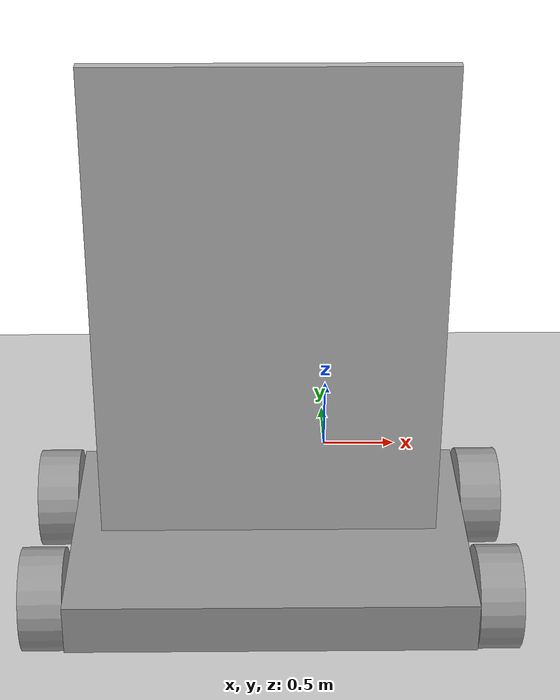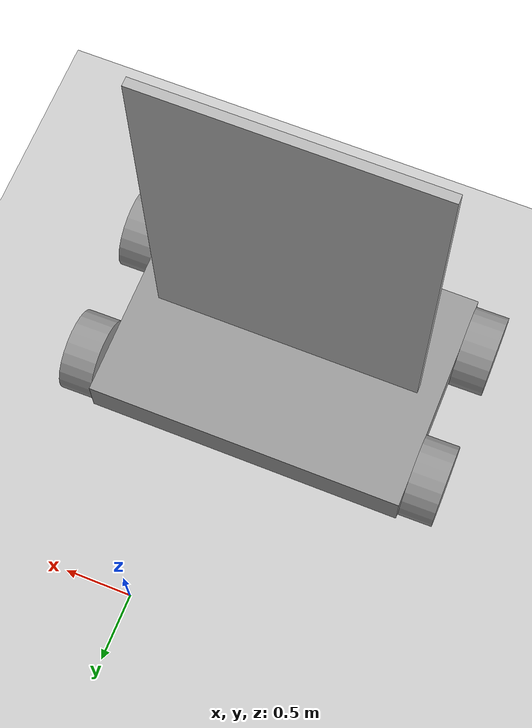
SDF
<sdf version="1.7">
 <world name="default">
  <light name="sun" type="directional">
   <pose>0 0 10 0 -0 0</pose>
   <diffuse>0.8 0.8 0.8 1</diffuse>
   <specular>0.2 0.2 0.2 1</specular>
   <attenuation>
    <range>1000</range>
    <constant>0.9</constant>
    <linear>0.01</linear>
    <quadratic>0.001</quadratic>
   </attenuation>
   <direction>-0.5 0.1 -0.9</direction>
   <spot><inner_angle>0</inner_angle><outer_angle>0</outer_angle><falloff>0</falloff></spot>
  </light>
  <model name="ground_plane">
   <static>1</static>
   <link name="link">
    <collision name="collision">
     <geometry><plane><normal>0 0 1</normal><size>100 100</size></plane></geometry>
     <surface>
      <contact><collide_bitmask>65535</collide_bitmask></contact>
      <friction><ode><mu>100</mu><mu2>50</mu2></ode></friction>
     </surface>
    </collision>
    <visual name="visual">
     <cast_shadows>0</cast_shadows>
     <geometry><plane><normal>0 0 1</normal><size>100 100</size></plane></geometry>
     <material>
      <script><uri>file://media/materials/scripts/gazebo.material</uri><name>Gazebo/Grey</name></script>
     </material>
    </visual>
   </link>
  </model>
  <gravity>0 0 -9.8</gravity>
  <magnetic_field>6e-06 2.3e-05 -4.2e-05</magnetic_field>
  <atmosphere type="adiabatic"/>
  <physics type="ode">
   <max_step_size>0.001</max_step_size>
   <real_time_factor>1</real_time_factor>
   <real_time_update_rate>1000</real_time_update_rate>
  </physics>
  <scene><ambient>0.4 0.4 0.4 1</ambient><background>0.7 0.7 0.7 1</background><shadows>1</shadows></scene>
  <spherical_coordinates>
   <surface_model>EARTH_WGS84</surface_model>
   <latitude_deg>0</latitude_deg>
   <longitude_deg>0</longitude_deg>
   <elevation>0</elevation>
   <heading_deg>0</heading_deg>
  </spherical_coordinates>
  <model name="newcar">
   <link name="link_2">
    <inertial>
     <mass>1.18976</mass>
     <inertia>
      <ixx>0.283727</ixx>
      <ixy>0</ixy>
      <ixz>0</ixz>
      <iyy>0.555714</iyy>
      <iyz>0</iyz>
      <izz>0.821029</izz>
     </inertia>
    </inertial>
    <pose>-0.068781 -0.11442 0.5 0 -0 0</pose>
    <visual name="visual">
     <geometry><box><size>2.34779 1.66398 0.304712</size></box></geometry>
     <material>
      <lighting>1</lighting>
      <script><uri>file://media/materials/scripts/gazebo.material</uri><name>Gazebo/Grey</name></script>
      <shader type="pixel"><normal_map>__default__</normal_map></shader>
      <ambient>0.3 0.3 0.3 1</ambient>
      <diffuse>0.7 0.7 0.7 1</diffuse>
      <specular>0.01 0.01 0.01 1</specular>
      <emissive>0 0 0 1</emissive>
     </material>
    </visual>
    <collision name="collision">
     <geometry><box><size>2.34779 1.66398 0.304712</size></box></geometry>
     <surface>
      <friction>
       <ode><mu>1</mu><mu2>1</mu2><fdir1>0 0 0</fdir1><slip1>0</slip1><slip2>0</slip2></ode>
       <torsional>
        <coefficient>1</coefficient>
        <patch_radius>0</patch_radius>
        <surface_radius>0</surface_radius>
        <use_patch_radius>1</use_patch_radius>
        <ode><slip>0</slip></ode>
       </torsional>
      </friction>
      <bounce><restitution_coefficient>0</restitution_coefficient><threshold>1e+06</threshold></bounce>
      <contact>
       <collide_without_contact>0</collide_without_contact>
       <collide_without_contact_bitmask>1</collide_without_contact_bitmask>
       <collide_bitmask>1</collide_bitmask>
       <ode>
        <soft_cfm>0</soft_cfm>
        <soft_erp>0.2</soft_erp>
        <kp>1e+13</kp>
        <kd>1</kd>
        <max_vel>0.01</max_vel>
        <min_depth>0</min_depth>
       </ode>
       <bullet>
        <split_impulse>1</split_impulse>
        <split_impulse_penetration_threshold>-0.01</split_impulse_penetration_threshold>
        <soft_cfm>0</soft_cfm>
        <soft_erp>0.2</soft_erp>
        <kp>1e+13</kp>
        <kd>1</kd>
       </bullet>
      </contact>
     </surface>
    </collision>
   </link>
   <link name="link_3_clone_clone_1">
    <inertial>
     <mass>1</mass>
     <inertia><ixx>0.145833</ixx><ixy>0</ixy><ixz>0</ixz><iyy>0.145833</iyy><iyz>0</iyz><izz>0.125</izz></inertia>
    </inertial>
    <pose>1.23342 -0.645018 0.5 1.57079 -9.6e-05 -1.55974</pose>
    <visual name="visual">
     <geometry><cylinder><radius>0.3</radius><length>0.25</length></cylinder></geometry>
     <material>
      <lighting>1</lighting>
      <script><uri>file://media/materials/scripts/gazebo.material</uri><name>Gazebo/Grey</name></script>
      <shader type="pixel"><normal_map>__default__</normal_map></shader>
      <ambient>0.3 0.3 0.3 1</ambient>
      <diffuse>0.7 0.7 0.7 1</diffuse>
      <specular>0.01 0.01 0.01 1</specular>
      <emissive>0 0 0 1</emissive>
     </material>
    </visual>
    <collision name="collision">
     <geometry><cylinder><radius>0.3</radius><length>0.25</length></cylinder></geometry>
     <surface>
      <friction>
       <ode><mu>1</mu><mu2>1</mu2><fdir1>0 0 0</fdir1><slip1>0</slip1><slip2>0</slip2></ode>
       <torsional>
        <coefficient>1</coefficient>
        <patch_radius>0</patch_radius>
        <surface_radius>0</surface_radius>
        <use_patch_radius>1</use_patch_radius>
        <ode><slip>0</slip></ode>
       </torsional>
      </friction>
      <bounce><restitution_coefficient>0</restitution_coefficient><threshold>1e+06</threshold></bounce>
      <contact>
       <collide_without_contact>0</collide_without_contact>
       <collide_without_contact_bitmask>1</collide_without_contact_bitmask>
       <collide_bitmask>1</collide_bitmask>
       <ode>
        <soft_cfm>0</soft_cfm>
        <soft_erp>0.2</soft_erp>
        <kp>1e+13</kp>
        <kd>1</kd>
        <max_vel>0.01</max_vel>
        <min_depth>0</min_depth>
       </ode>
       <bullet>
        <split_impulse>1</split_impulse>
        <split_impulse_penetration_threshold>-0.01</split_impulse_penetration_threshold>
        <soft_cfm>0</soft_cfm>
        <soft_erp>0.2</soft_erp>
        <kp>1e+13</kp>
        <kd>1</kd>
       </bullet>
      </contact>
     </surface>
    </collision>
   </link>
   <link name="link_3_clone_clone_1_clone">
    <inertial>
     <mass>1</mass>
     <inertia><ixx>0.145833</ixx><ixy>0</ixy><ixz>0</ixz><iyy>0.145833</iyy><iyz>0</iyz><izz>0.125</izz></inertia>
    </inertial>
    <pose>1.23342 0.416178 0.5 1.57079 -9.6e-05 -1.55974</pose>
    <visual name="visual">
     <geometry><cylinder><radius>0.3</radius><length>0.25</length></cylinder></geometry>
     <material>
      <lighting>1</lighting>
      <script><uri>file://media/materials/scripts/gazebo.material</uri><name>Gazebo/Grey</name></script>
      <shader type="pixel"><normal_map>__default__</normal_map></shader>
      <ambient>0.3 0.3 0.3 1</ambient>
      <diffuse>0.7 0.7 0.7 1</diffuse>
      <specular>0.01 0.01 0.01 1</specular>
      <emissive>0 0 0 1</emissive>
     </material>
    </visual>
    <collision name="collision">
     <geometry><cylinder><radius>0.3</radius><length>0.25</length></cylinder></geometry>
     <surface>
      <friction>
       <ode><mu>1</mu><mu2>1</mu2><fdir1>0 0 0</fdir1><slip1>0</slip1><slip2>0</slip2></ode>
       <torsional>
        <coefficient>1</coefficient>
        <patch_radius>0</patch_radius>
        <surface_radius>0</surface_radius>
        <use_patch_radius>1</use_patch_radius>
        <ode><slip>0</slip></ode>
       </torsional>
      </friction>
      <bounce><restitution_coefficient>0</restitution_coefficient><threshold>1e+06</threshold></bounce>
      <contact>
       <collide_without_contact>0</collide_without_contact>
       <collide_without_contact_bitmask>1</collide_without_contact_bitmask>
       <collide_bitmask>1</collide_bitmask>
       <ode>
        <soft_cfm>0</soft_cfm>
        <soft_erp>0.2</soft_erp>
        <kp>1e+13</kp>
        <kd>1</kd>
        <max_vel>0.01</max_vel>
        <min_depth>0</min_depth>
       </ode>
       <bullet>
        <split_impulse>1</split_impulse>
        <split_impulse_penetration_threshold>-0.01</split_impulse_penetration_threshold>
        <soft_cfm>0</soft_cfm>
        <soft_erp>0.2</soft_erp>
        <kp>1e+13</kp>
        <kd>1</kd>
       </bullet>
      </contact>
     </surface>
    </collision>
   </link>
   <link name="link_3_clone_clone_1_clone_0">
    <inertial>
     <mass>1</mass>
     <inertia><ixx>0.145833</ixx><ixy>0</ixy><ixz>0</ixz><iyy>0.145833</iyy><iyz>0</iyz><izz>0.125</izz></inertia>
    </inertial>
    <pose>-1.37098 0.416178 0.5 1.57079 -9.6e-05 -1.55974</pose>
    <visual name="visual">
     <geometry><cylinder><radius>0.3</radius><length>0.25</length></cylinder></geometry>
     <material>
      <lighting>1</lighting>
      <script><uri>file://media/materials/scripts/gazebo.material</uri><name>Gazebo/Grey</name></script>
      <shader type="pixel"><normal_map>__default__</normal_map></shader>
      <ambient>0.3 0.3 0.3 1</ambient>
      <diffuse>0.7 0.7 0.7 1</diffuse>
      <specular>0.01 0.01 0.01 1</specular>
      <emissive>0 0 0 1</emissive>
     </material>
    </visual>
    <collision name="collision">
     <geometry><cylinder><radius>0.3</radius><length>0.25</length></cylinder></geometry>
     <surface>
      <friction>
       <ode><mu>1</mu><mu2>1</mu2><fdir1>0 0 0</fdir1><slip1>0</slip1><slip2>0</slip2></ode>
       <torsional>
        <coefficient>1</coefficient>
        <patch_radius>0</patch_radius>
        <surface_radius>0</surface_radius>
        <use_patch_radius>1</use_patch_radius>
        <ode><slip>0</slip></ode>
       </torsional>
      </friction>
      <bounce><restitution_coefficient>0</restitution_coefficient><threshold>1e+06</threshold></bounce>
      <contact>
       <collide_without_contact>0</collide_without_contact>
       <collide_without_contact_bitmask>1</collide_without_contact_bitmask>
       <collide_bitmask>1</collide_bitmask>
       <ode>
        <soft_cfm>0</soft_cfm>
        <soft_erp>0.2</soft_erp>
        <kp>1e+13</kp>
        <kd>1</kd>
        <max_vel>0.01</max_vel>
        <min_depth>0</min_depth>
       </ode>
       <bullet>
        <split_impulse>1</split_impulse>
        <split_impulse_penetration_threshold>-0.01</split_impulse_penetration_threshold>
        <soft_cfm>0</soft_cfm>
        <soft_erp>0.2</soft_erp>
        <kp>1e+13</kp>
        <kd>1</kd>
       </bullet>
      </contact>
     </surface>
    </collision>
   </link>
   <link name="link_3_clone_clone_1_clone_1">
    <inertial>
     <mass>1</mass>
     <inertia><ixx>0.145833</ixx><ixy>0</ixy><ixz>0</ixz><iyy>0.145833</iyy><iyz>0</iyz><izz>0.125</izz></inertia>
    </inertial>
    <pose>-1.37098 -0.645018 0.5 1.57079 -9.6e-05 -1.55974</pose>
    <visual name="visual">
     <geometry><cylinder><radius>0.3</radius><length>0.25</length></cylinder></geometry>
     <material>
      <lighting>1</lighting>
      <script><uri>file://media/materials/scripts/gazebo.material</uri><name>Gazebo/Grey</name></script>
      <shader type="pixel"><normal_map>__default__</normal_map></shader>
      <ambient>0.3 0.3 0.3 1</ambient>
      <diffuse>0.7 0.7 0.7 1</diffuse>
      <specular>0.01 0.01 0.01 1</specular>
      <emissive>0 0 0 1</emissive>
     </material>
    </visual>
    <collision name="collision">
     <geometry><cylinder><radius>0.3</radius><length>0.25</length></cylinder></geometry>
     <surface>
      <friction>
       <ode><mu>1</mu><mu2>1</mu2><fdir1>0 0 0</fdir1><slip1>0</slip1><slip2>0</slip2></ode>
       <torsional>
        <coefficient>1</coefficient>
        <patch_radius>0</patch_radius>
        <surface_radius>0</surface_radius>
        <use_patch_radius>1</use_patch_radius>
        <ode><slip>0</slip></ode>
       </torsional>
      </friction>
      <bounce><restitution_coefficient>0</restitution_coefficient><threshold>1e+06</threshold></bounce>
      <contact>
       <collide_without_contact>0</collide_without_contact>
       <collide_without_contact_bitmask>1</collide_without_contact_bitmask>
       <collide_bitmask>1</collide_bitmask>
       <ode>
        <soft_cfm>0</soft_cfm>
        <soft_erp>0.2</soft_erp>
        <kp>1e+13</kp>
        <kd>1</kd>
        <max_vel>0.01</max_vel>
        <min_depth>0</min_depth>
       </ode>
       <bullet>
        <split_impulse>1</split_impulse>
        <split_impulse_penetration_threshold>-0.01</split_impulse_penetration_threshold>
        <soft_cfm>0</soft_cfm>
        <soft_erp>0.2</soft_erp>
        <kp>1e+13</kp>
        <kd>1</kd>
       </bullet>
      </contact>
     </surface>
    </collision>
   </link>
   <model name="binsOnly">
    <link name="link_0">
     <inertial>
      <mass>1</mass>
      <inertia>
       <ixx>0.166667</ixx>
       <ixy>0</ixy>
       <ixz>0</ixz>
       <iyy>0.166667</iyy>
       <iyz>0</iyz>
       <izz>0.166667</izz>
      </inertia>
     </inertial>
     <visual name="visual">
      <geometry><mesh><uri>/home/kenan/testFlight/binsOnly.dae</uri><scale>1 1 1</scale></mesh></geometry>
     </visual>
     <collision name="collision">
      <geometry><mesh><uri>/home/kenan/testFlight/binsOnly.dae</uri><scale>1 1 1</scale></mesh></geometry>
      <surface>
       <friction>
        <ode><mu>1</mu><mu2>1</mu2><fdir1>0 0 0</fdir1><slip1>0</slip1><slip2>0</slip2></ode>
        <torsional>
         <coefficient>1</coefficient>
         <patch_radius>0</patch_radius>
         <surface_radius>0</surface_radius>
         <use_patch_radius>1</use_patch_radius>
         <ode><slip>0</slip></ode>
        </torsional>
       </friction>
       <bounce><restitution_coefficient>0</restitution_coefficient><threshold>1e+06</threshold></bounce>
       <contact>
        <collide_without_contact>0</collide_without_contact>
        <collide_without_contact_bitmask>1</collide_without_contact_bitmask>
        <collide_bitmask>1</collide_bitmask>
        <ode>
         <soft_cfm>0</soft_cfm>
         <soft_erp>0.2</soft_erp>
         <kp>1e+13</kp>
         <kd>1</kd>
         <max_vel>0.01</max_vel>
         <min_depth>0</min_depth>
        </ode>
        <bullet>
         <split_impulse>1</split_impulse>
         <split_impulse_penetration_threshold>-0.01</split_impulse_penetration_threshold>
         <soft_cfm>0</soft_cfm>
         <soft_erp>0.2</soft_erp>
         <kp>1e+13</kp>
         <kd>1</kd>
        </bullet>
       </contact>
      </surface>
     </collision>
    </link>
    <static>0</static>
    <pose>0.003387 -0.147686 0.609789 0 -0 0</pose>
   </model>
   <joint name="link_2_JOINT_11" type="revolute">
    <parent>link_2</parent>
    <child>link_3_clone_clone_1</child>
    <axis>
     <xyz>0 0 1</xyz>
     <limit>
      <lower>-1.79769e+308</lower>
      <upper>1.79769e+308</upper>
      <effort>-1</effort>
      <velocity>-1</velocity>
     </limit>
     <dynamics>
      <spring_reference>0</spring_reference>
      <spring_stiffness>0</spring_stiffness>
      <damping>0</damping>
      <friction>0</friction>
     </dynamics>
    </axis>
    <physics>
     <ode><limit><cfm>0</cfm><erp>0.2</erp></limit><suspension><cfm>0</cfm><erp>0.2</erp></suspension></ode>
    </physics>
   </joint>
   <joint name="link_2_JOINT_12" type="revolute">
    <parent>link_2</parent>
    <child>link_3_clone_clone_1_clone</child>
    <pose>0 0 0 -0.02 0 0</pose>
    <axis>
     <xyz>0 0 1</xyz>
     <limit>
      <lower>-1.79769e+308</lower>
      <upper>1.79769e+308</upper>
      <effort>-1</effort>
      <velocity>-1</velocity>
     </limit>
     <dynamics>
      <spring_reference>0</spring_reference>
      <spring_stiffness>0</spring_stiffness>
      <damping>0</damping>
      <friction>0</friction>
     </dynamics>
    </axis>
    <physics>
     <ode><limit><cfm>0</cfm><erp>0.2</erp></limit><suspension><cfm>0</cfm><erp>0.2</erp></suspension></ode>
    </physics>
   </joint>
   <joint name="link_2_JOINT_13" type="revolute">
    <parent>link_2</parent>
    <child>link_3_clone_clone_1_clone_0</child>
    <axis>
     <xyz>0 0 1</xyz>
     <limit>
      <lower>-1.79769e+308</lower>
      <upper>1.79769e+308</upper>
      <effort>-1</effort>
      <velocity>-1</velocity>
     </limit>
     <dynamics>
      <spring_reference>0</spring_reference>
      <spring_stiffness>0</spring_stiffness>
      <damping>0</damping>
      <friction>0</friction>
     </dynamics>
    </axis>
    <physics>
     <ode><limit><cfm>0</cfm><erp>0.2</erp></limit><suspension><cfm>0</cfm><erp>0.2</erp></suspension></ode>
    </physics>
   </joint>
   <joint name="link_2_JOINT_14" type="revolute">
    <parent>link_2</parent>
    <child>link_3_clone_clone_1_clone_1</child>
    <axis>
     <xyz>0 0 1</xyz>
     <limit>
      <lower>-1.79769e+308</lower>
      <upper>1.79769e+308</upper>
      <effort>-1</effort>
      <velocity>-1</velocity>
     </limit>
     <dynamics>
      <spring_reference>0</spring_reference>
      <spring_stiffness>0</spring_stiffness>
      <damping>0</damping>
      <friction>0</friction>
     </dynamics>
    </axis>
    <physics>
     <ode><limit><cfm>0</cfm><erp>0.2</erp></limit><suspension><cfm>0</cfm><erp>0.2</erp></suspension></ode>
    </physics>
   </joint>
   <joint name="link_2_JOINT_16" type="revolute">
    <parent>link_2</parent>
    <child>binsOnly::link_0</child>
    <axis>
     <xyz>1 0 0</xyz>
     <limit>
      <lower>-1.79769e+308</lower>
      <upper>1.79769e+308</upper>
      <effort>-1</effort>
      <velocity>-1</velocity>
     </limit>
     <dynamics>
      <spring_reference>0</spring_reference>
      <spring_stiffness>0</spring_stiffness>
      <damping>0</damping>
     </dynamics>
    </axis>
    <physics>
     <ode><limit><cfm>0</cfm><erp>0.2</erp></limit><suspension><cfm>0</cfm><erp>0.2</erp></suspension></ode>
    </physics>
   </joint>
   <static>0</static>
   <pose>-0.347943 -1.8658 0 0 -0 0</pose>
   <plugin name="diff_drive" filename="libgazebo_ros_diff_drive.so">
    <ros>
     <namespace>/commanderFront</namespace>
     <remapping>cmd_vel:=cmd_demo</remapping>
     <remapping>odom:=odom_demo</remapping>
    </ros>
    <left_joint>link_2_JOINT_11</left_joint>
    <right_joint>link_2_JOINT_12</right_joint>
    <wheel_separation>1.25</wheel_separation>
    <wheel_diameter>0.6</wheel_diameter>
    <max_wheel_torque>20</max_wheel_torque>
    <max_wheel_acceleration>1.0</max_wheel_acceleration>
    <publish_odom>true</publish_odom>
    <publish_odom_tf>true</publish_odom_tf>
    <publish_wheel_tf>true</publish_wheel_tf>
    <odometry_frame>odom_demo</odometry_frame>
    <robot_base_frame>chassis</robot_base_frame>
   </plugin>
   <plugin name="diff_drive" filename="libgazebo_ros_diff_drive.so">
    <ros>
     <namespace>/commanderBack</namespace>
     <remapping>cmd_vel:=cmd_demo</remapping>
     <remapping>odom:=odom_demo</remapping>
    </ros>
    <left_joint>link_2_JOINT_11</left_joint>
    <right_joint>link_2_JOINT_12</right_joint>
    <wheel_separation>1.25</wheel_separation>
    <wheel_diameter>0.6</wheel_diameter>
    <max_wheel_torque>20</max_wheel_torque>
    <max_wheel_acceleration>1.0</max_wheel_acceleration>
    <publish_odom>true</publish_odom>
    <publish_odom_tf>true</publish_odom_tf>
    <publish_wheel_tf>true</publish_wheel_tf>
    <odometry_frame>odom_demo</odometry_frame>
    <robot_base_frame>chassis</robot_base_frame>
   </plugin>
  </model>
 </world>
</sdf>
